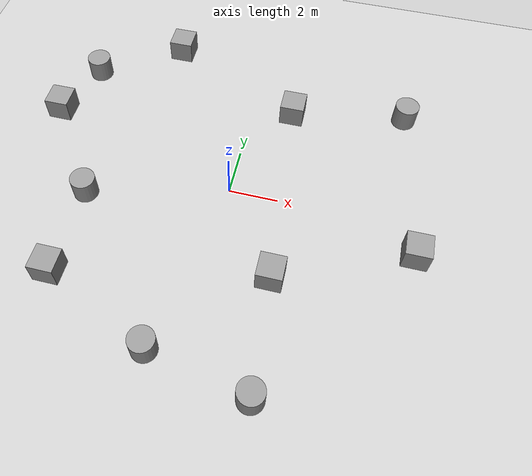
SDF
<sdf version="1.7">
 <world name="default">
  <light name="sun" type="directional">
   <pose>0 0 10 0 -0 0</pose>
   <diffuse>0.8 0.8 0.8 1</diffuse>
   <specular>0.2 0.2 0.2 1</specular>
   <attenuation>
    <range>1000</range>
    <constant>0.9</constant>
    <linear>0.01</linear>
    <quadratic>0.001</quadratic>
   </attenuation>
   <direction>-0.5 0.1 -0.9</direction>
   <spot><inner_angle>0</inner_angle><outer_angle>0</outer_angle><falloff>0</falloff></spot>
  </light>
  <model name="ground_plane">
   <static>1</static>
   <link name="link">
    <collision name="collision">
     <geometry><plane><normal>0 0 1</normal><size>100 100</size></plane></geometry>
     <surface>
      <contact><collide_bitmask>65535</collide_bitmask></contact>
      <friction><ode><mu>100</mu><mu2>50</mu2></ode></friction>
     </surface>
    </collision>
    <visual name="visual">
     <cast_shadows>0</cast_shadows>
     <geometry><plane><normal>0 0 1</normal><size>100 100</size></plane></geometry>
     <material>
      <script><uri>file://media/materials/scripts/gazebo.material</uri><name>Gazebo/Grey</name></script>
     </material>
    </visual>
   </link>
  </model>
  <gravity>0 0 -9.8</gravity>
  <magnetic_field>6e-06 2.3e-05 -4.2e-05</magnetic_field>
  <atmosphere type="adiabatic"/>
  <physics type="ode">
   <max_step_size>0.001</max_step_size>
   <real_time_factor>1</real_time_factor>
   <real_time_update_rate>1000</real_time_update_rate>
  </physics>
  <scene><ambient>0.4 0.4 0.4 1</ambient><background>0.7 0.7 0.7 1</background><shadows>1</shadows></scene>
  <audio><device>default</device></audio>
  <spherical_coordinates>
   <surface_model>EARTH_WGS84</surface_model>
   <latitude_deg>0</latitude_deg>
   <longitude_deg>0</longitude_deg>
   <elevation>0</elevation>
   <heading_deg>0</heading_deg>
  </spherical_coordinates>
  <model name="unit_box">
   <pose>-5.62998 -5.10799 0.499995 1e-05 -0 0</pose>
   <link name="link">
    <inertial>
     <mass>1</mass>
     <inertia>
      <ixx>0.166667</ixx>
      <ixy>0</ixy>
      <ixz>0</ixz>
      <iyy>0.166667</iyy>
      <iyz>0</iyz>
      <izz>0.166667</izz>
     </inertia>
    </inertial>
    <collision name="collision"><geometry><box><size>1 1 1</size></box></geometry></collision>
    <visual name="visual">
     <geometry><box><size>1 1 1</size></box></geometry>
     <material>
      <script><name>Gazebo/Grey</name><uri>file://media/materials/scripts/gazebo.material</uri></script>
     </material>
    </visual>
   </link>
  </model>
  <model name="unit_cylinder">
   <pose>-7.39873 5.08256 0.499992 -3e-06 3e-06 0</pose>
   <link name="link">
    <inertial>
     <mass>1</mass>
     <inertia><ixx>0.145833</ixx><ixy>0</ixy><ixz>0</ixz><iyy>0.145833</iyy><iyz>0</iyz><izz>0.125</izz></inertia>
    </inertial>
    <collision name="collision">
     <geometry><cylinder><radius>0.5</radius><length>1</length></cylinder></geometry>
    </collision>
    <visual name="visual">
     <geometry><cylinder><radius>0.5</radius><length>1</length></cylinder></geometry>
     <material>
      <script><name>Gazebo/Grey</name><uri>file://media/materials/scripts/gazebo.material</uri></script>
     </material>
    </visual>
   </link>
  </model>
  <model name="unit_box_0">
   <pose>-8.22635 2.50208 0.499995 1e-05 -0 0</pose>
   <link name="link">
    <inertial>
     <mass>1</mass>
     <inertia>
      <ixx>0.166667</ixx>
      <ixy>0</ixy>
      <ixz>0</ixz>
      <iyy>0.166667</iyy>
      <iyz>0</iyz>
      <izz>0.166667</izz>
     </inertia>
    </inertial>
    <collision name="collision"><geometry><box><size>1 1 1</size></box></geometry></collision>
    <visual name="visual">
     <geometry><box><size>1 1 1</size></box></geometry>
     <material>
      <script><name>Gazebo/Grey</name><uri>file://media/materials/scripts/gazebo.material</uri></script>
     </material>
    </visual>
   </link>
  </model>
  <model name="unit_cylinder_0">
   <pose>-5.62386 -1.44833 0.499992 -3e-06 3e-06 0</pose>
   <link name="link">
    <inertial>
     <mass>1</mass>
     <inertia><ixx>0.145833</ixx><ixy>0</ixy><ixz>0</ixz><iyy>0.145833</iyy><iyz>0</iyz><izz>0.125</izz></inertia>
    </inertial>
    <collision name="collision">
     <geometry><cylinder><radius>0.5</radius><length>1</length></cylinder></geometry>
    </collision>
    <visual name="visual">
     <geometry><cylinder><radius>0.5</radius><length>1</length></cylinder></geometry>
     <material>
      <script><name>Gazebo/Grey</name><uri>file://media/materials/scripts/gazebo.material</uri></script>
     </material>
    </visual>
   </link>
  </model>
  <model name="unit_cylinder_1">
   <pose>-1.25072 -7.16272 0.499992 -3e-06 4e-06 0</pose>
   <link name="link">
    <inertial>
     <mass>1</mass>
     <inertia><ixx>0.145833</ixx><ixy>0</ixy><ixz>0</ixz><iyy>0.145833</iyy><iyz>0</iyz><izz>0.125</izz></inertia>
    </inertial>
    <collision name="collision">
     <geometry><cylinder><radius>0.5</radius><length>1</length></cylinder></geometry>
    </collision>
    <visual name="visual">
     <geometry><cylinder><radius>0.5</radius><length>1</length></cylinder></geometry>
     <material>
      <script><name>Gazebo/Grey</name><uri>file://media/materials/scripts/gazebo.material</uri></script>
     </material>
    </visual>
   </link>
  </model>
  <model name="unit_box_1">
   <pose>2.42173 -3.44986 0.499995 0 -1e-05 0</pose>
   <link name="link">
    <inertial>
     <mass>1</mass>
     <inertia>
      <ixx>0.166667</ixx>
      <ixy>0</ixy>
      <ixz>0</ixz>
      <iyy>0.166667</iyy>
      <iyz>0</iyz>
      <izz>0.166667</izz>
     </inertia>
    </inertial>
    <collision name="collision"><geometry><box><size>1 1 1</size></box></geometry></collision>
    <visual name="visual">
     <geometry><box><size>1 1 1</size></box></geometry>
     <material>
      <script><name>Gazebo/Grey</name><uri>file://media/materials/scripts/gazebo.material</uri></script>
     </material>
    </visual>
   </link>
  </model>
  <model name="unit_cylinder_2">
   <pose>2.7066 -7.96384 0.499992 -3e-06 4e-06 0</pose>
   <link name="link">
    <inertial>
     <mass>1</mass>
     <inertia><ixx>0.145833</ixx><ixy>0</ixy><ixz>0</ixz><iyy>0.145833</iyy><iyz>0</iyz><izz>0.125</izz></inertia>
    </inertial>
    <collision name="collision">
     <geometry><cylinder><radius>0.5</radius><length>1</length></cylinder></geometry>
    </collision>
    <visual name="visual">
     <geometry><cylinder><radius>0.5</radius><length>1</length></cylinder></geometry>
     <material>
      <script><name>Gazebo/Grey</name><uri>file://media/materials/scripts/gazebo.material</uri></script>
     </material>
    </visual>
   </link>
  </model>
  <model name="unit_cylinder_3">
   <pose>6.52929 5.45688 0.499998 3e-06 4e-06 -0</pose>
   <link name="link">
    <inertial>
     <mass>1</mass>
     <inertia><ixx>0.145833</ixx><ixy>0</ixy><ixz>0</ixz><iyy>0.145833</iyy><iyz>0</iyz><izz>0.125</izz></inertia>
    </inertial>
    <collision name="collision">
     <geometry><cylinder><radius>0.5</radius><length>1</length></cylinder></geometry>
    </collision>
    <visual name="visual">
     <geometry><cylinder><radius>0.5</radius><length>1</length></cylinder></geometry>
     <material>
      <script><name>Gazebo/Grey</name><uri>file://media/materials/scripts/gazebo.material</uri></script>
     </material>
    </visual>
   </link>
  </model>
  <model name="unit_box_2">
   <pose>-4.03615 7.29969 0.499995 1e-05 -0 0</pose>
   <link name="link">
    <inertial>
     <mass>1</mass>
     <inertia>
      <ixx>0.166667</ixx>
      <ixy>0</ixy>
      <ixz>0</ixz>
      <iyy>0.166667</iyy>
      <iyz>0</iyz>
      <izz>0.166667</izz>
     </inertia>
    </inertial>
    <collision name="collision"><geometry><box><size>1 1 1</size></box></geometry></collision>
    <visual name="visual">
     <geometry><box><size>1 1 1</size></box></geometry>
     <material>
      <script><name>Gazebo/Grey</name><uri>file://media/materials/scripts/gazebo.material</uri></script>
     </material>
    </visual>
   </link>
  </model>
  <model name="unit_box_3">
   <pose>1.73338 4.59133 0.499995 0 -1e-05 0</pose>
   <link name="link">
    <inertial>
     <mass>1</mass>
     <inertia>
      <ixx>0.166667</ixx>
      <ixy>0</ixy>
      <ixz>0</ixz>
      <iyy>0.166667</iyy>
      <iyz>0</iyz>
      <izz>0.166667</izz>
     </inertia>
    </inertial>
    <collision name="collision"><geometry><box><size>1 1 1</size></box></geometry></collision>
    <visual name="visual">
     <geometry><box><size>1 1 1</size></box></geometry>
     <material>
      <script><name>Gazebo/Grey</name><uri>file://media/materials/scripts/gazebo.material</uri></script>
     </material>
    </visual>
   </link>
  </model>
  <model name="unit_box_4">
   <pose>7.54505 -1.28695 0.499995 1e-05 -0 0</pose>
   <link name="link">
    <inertial>
     <mass>1</mass>
     <inertia>
      <ixx>0.166667</ixx>
      <ixy>0</ixy>
      <ixz>0</ixz>
      <iyy>0.166667</iyy>
      <iyz>0</iyz>
      <izz>0.166667</izz>
     </inertia>
    </inertial>
    <collision name="collision"><geometry><box><size>1 1 1</size></box></geometry></collision>
    <visual name="visual">
     <geometry><box><size>1 1 1</size></box></geometry>
     <material>
      <script><name>Gazebo/Grey</name><uri>file://media/materials/scripts/gazebo.material</uri></script>
     </material>
    </visual>
   </link>
  </model>
 </world>
</sdf>
